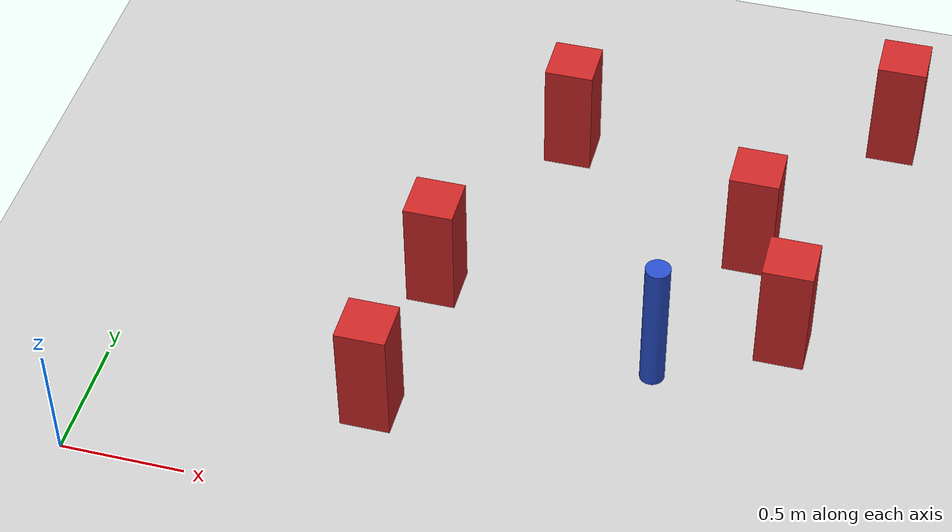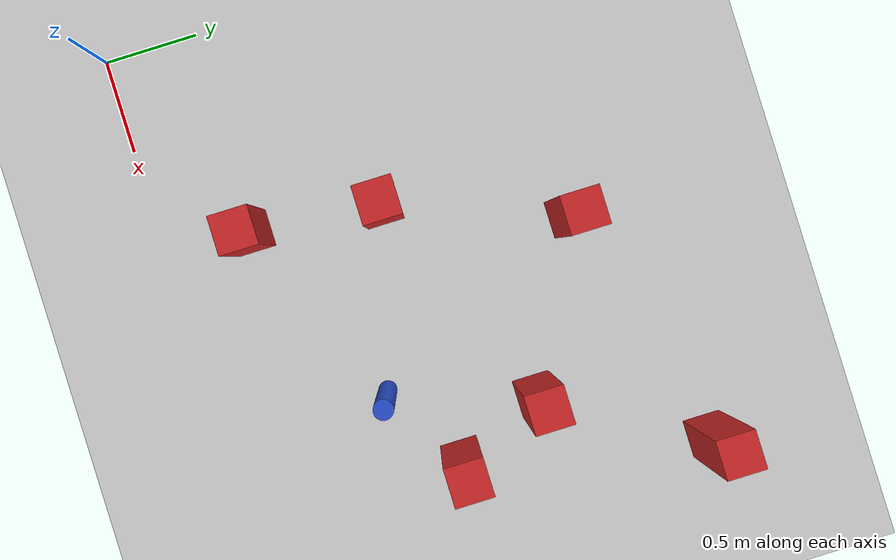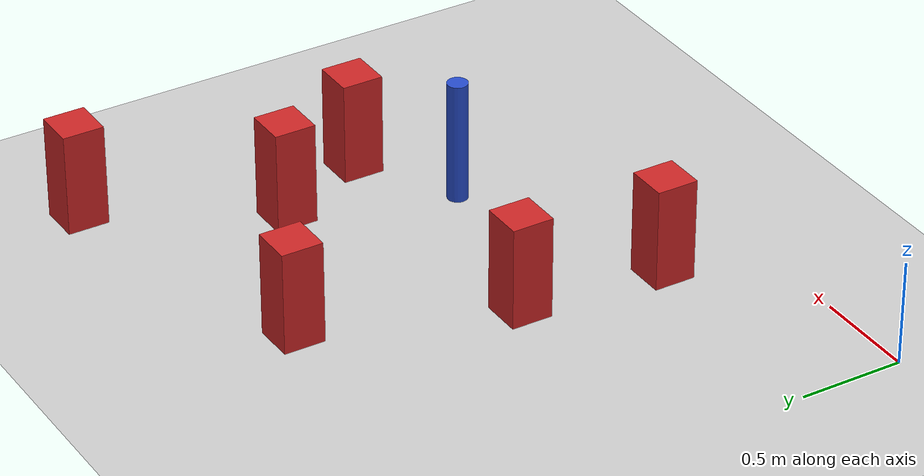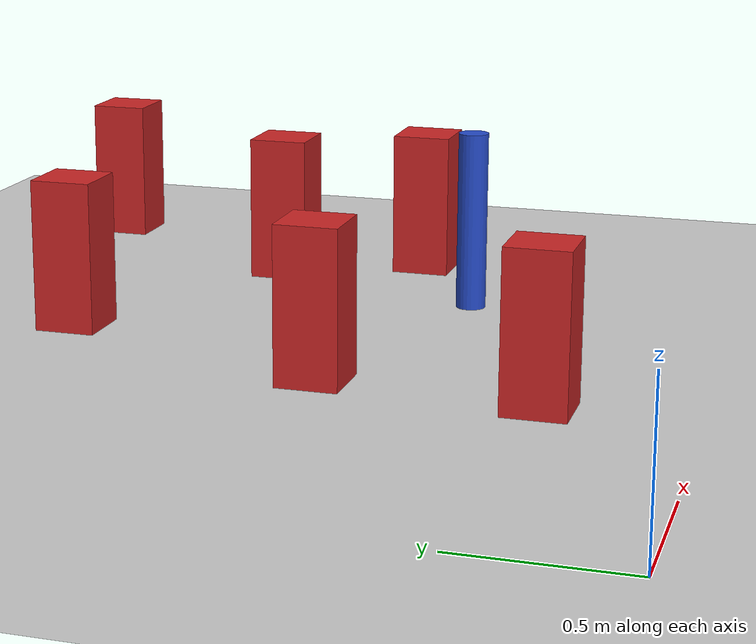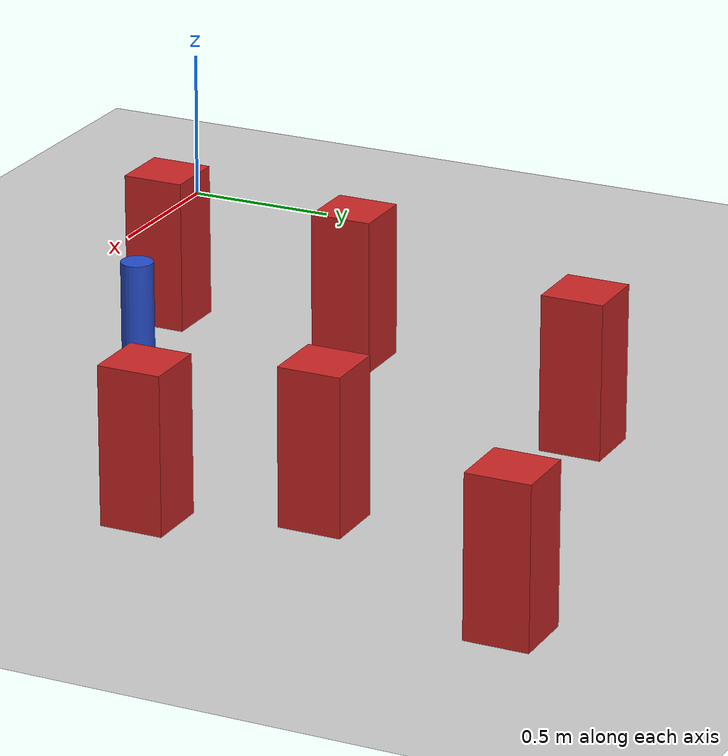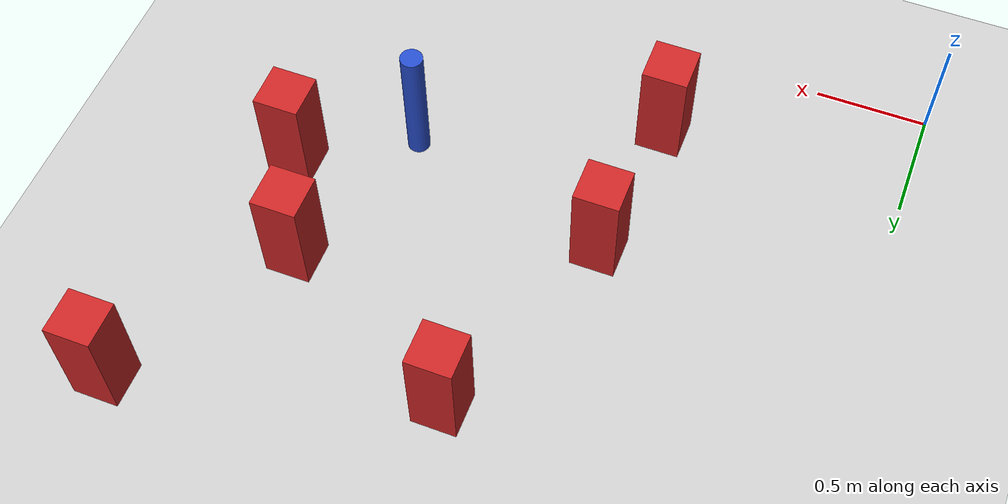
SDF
<sdf version="1.6">
 <world name="default">
  <model name="ground_plane">
   <static>1</static>
   <link name="link">
    <collision name="collision">
     <geometry><plane><normal>0 0 1</normal><size>100 100</size></plane></geometry>
     <surface><friction><ode><mu>100</mu><mu2>50</mu2></ode></friction></surface>
    </collision>
    <visual name="visual">
     <cast_shadows>0</cast_shadows>
     <geometry><plane><normal>0 0 1</normal><size>100 100</size></plane></geometry>
     <material>
      <ambient>1.0 1.0 1.0 1.0</ambient>
      <diffuse>0.8 0.8 0.8 1.0</diffuse>
      <specular>0.01 0.01 0.01 1.000000</specular>
     </material>
    </visual>
   </link>
  </model>
  <model name="square_post_obstacle22">
   <static>true</static>
   <pose>1.09951988133 0.476390049716 1.91545236811e-07 -7.35059704564e-06 1.12565212e-07 2.39332434364e-05</pose>
   <link name="link">
    <pose>0 0 0.25 0 -0 0</pose>
    <inertial>
     <mass>100</mass>
     <inertia>
      <ixx>0.166667</ixx>
      <ixy>0</ixy>
      <ixz>0</ixz>
      <iyy>0.166667</iyy>
      <iyz>0</iyz>
      <izz>0.166667</izz>
     </inertia>
    </inertial>
    <collision name="collision"><geometry><box><size>.2 .2 .5</size></box></geometry></collision>
    <visual name="visual">
     <geometry><box><size>.2 .2 .5</size></box></geometry>
     <material>
      <script><name>Gazebo/Red</name><uri>file://media/materials/scripts/gazebo.material</uri></script>
     </material>
    </visual>
   </link>
  </model>
  <model name="square_post_obstacle40">
   <static>true</static>
   <pose>1.16392120445 1.17354132471 1.91545236811e-07 -7.35059704564e-06 1.12565212e-07 2.39332434364e-05</pose>
   <link name="link">
    <pose>0 0 0.25 0 -0 0</pose>
    <inertial>
     <mass>100</mass>
     <inertia>
      <ixx>0.166667</ixx>
      <ixy>0</ixy>
      <ixz>0</ixz>
      <iyy>0.166667</iyy>
      <iyz>0</iyz>
      <izz>0.166667</izz>
     </inertia>
    </inertial>
    <collision name="collision"><geometry><box><size>.2 .2 .5</size></box></geometry></collision>
    <visual name="visual">
     <geometry><box><size>.2 .2 .5</size></box></geometry>
     <material>
      <script><name>Gazebo/Red</name><uri>file://media/materials/scripts/gazebo.material</uri></script>
     </material>
    </visual>
   </link>
  </model>
  <model name="square_post_obstacle41">
   <static>true</static>
   <pose>2.58108066992 1.194146074 1.91545236811e-07 -7.35059704564e-06 1.12565212e-07 2.39332434364e-05</pose>
   <link name="link">
    <pose>0 0 0.25 0 -0 0</pose>
    <inertial>
     <mass>100</mass>
     <inertia>
      <ixx>0.166667</ixx>
      <ixy>0</ixy>
      <ixz>0</ixz>
      <iyy>0.166667</iyy>
      <iyz>0</iyz>
      <izz>0.166667</izz>
     </inertia>
    </inertial>
    <collision name="collision"><geometry><box><size>.2 .2 .5</size></box></geometry></collision>
    <visual name="visual">
     <geometry><box><size>.2 .2 .5</size></box></geometry>
     <material>
      <script><name>Gazebo/Red</name><uri>file://media/materials/scripts/gazebo.material</uri></script>
     </material>
    </visual>
   </link>
  </model>
  <model name="square_post_obstacle94">
   <static>true</static>
   <pose>2.83821839437 2.46980169838 1.91545236811e-07 -7.35059704564e-06 1.12565212e-07 2.39332434364e-05</pose>
   <link name="link">
    <pose>0 0 0.25 0 -0 0</pose>
    <inertial>
     <mass>100</mass>
     <inertia>
      <ixx>0.166667</ixx>
      <ixy>0</ixy>
      <ixz>0</ixz>
      <iyy>0.166667</iyy>
      <iyz>0</iyz>
      <izz>0.166667</izz>
     </inertia>
    </inertial>
    <collision name="collision"><geometry><box><size>.2 .2 .5</size></box></geometry></collision>
    <visual name="visual">
     <geometry><box><size>.2 .2 .5</size></box></geometry>
     <material>
      <script><name>Gazebo/Red</name><uri>file://media/materials/scripts/gazebo.material</uri></script>
     </material>
    </visual>
   </link>
  </model>
  <model name="square_post_obstacle161">
   <static>true</static>
   <pose>2.36531829054 1.66253692175 1.91545236811e-07 -7.35059704564e-06 1.12565212e-07 2.39332434364e-05</pose>
   <link name="link">
    <pose>0 0 0.25 0 -0 0</pose>
    <inertial>
     <mass>100</mass>
     <inertia>
      <ixx>0.166667</ixx>
      <ixy>0</ixy>
      <ixz>0</ixz>
      <iyy>0.166667</iyy>
      <iyz>0</iyz>
      <izz>0.166667</izz>
     </inertia>
    </inertial>
    <collision name="collision"><geometry><box><size>.2 .2 .5</size></box></geometry></collision>
    <visual name="visual">
     <geometry><box><size>.2 .2 .5</size></box></geometry>
     <material>
      <script><name>Gazebo/Red</name><uri>file://media/materials/scripts/gazebo.material</uri></script>
     </material>
    </visual>
   </link>
  </model>
  <model name="square_post_obstacle184">
   <static>true</static>
   <pose>1.50473408871 2.10762487836 1.91545236811e-07 -7.35059704564e-06 1.12565212e-07 2.39332434364e-05</pose>
   <link name="link">
    <pose>0 0 0.25 0 -0 0</pose>
    <inertial>
     <mass>100</mass>
     <inertia>
      <ixx>0.166667</ixx>
      <ixy>0</ixy>
      <ixz>0</ixz>
      <iyy>0.166667</iyy>
      <iyz>0</iyz>
      <izz>0.166667</izz>
     </inertia>
    </inertial>
    <collision name="collision"><geometry><box><size>.2 .2 .5</size></box></geometry></collision>
    <visual name="visual">
     <geometry><box><size>.2 .2 .5</size></box></geometry>
     <material>
      <script><name>Gazebo/Red</name><uri>file://media/materials/scripts/gazebo.material</uri></script>
     </material>
    </visual>
   </link>
  </model>
  <model name="pole_obstacle220">
   <static>true</static>
   <pose>2.11220750726 0.917603680512 7.38925637345e-09 -8.471706928e-08 1.24976765177e-08 -1.74513093012e-07</pose>
   <link name="link">
    <pose>0 0 0.3 0 -0 0</pose>
    <inertial>
     <mass>1</mass>
     <inertia><ixx>0.145833</ixx><ixy>0</ixy><ixz>0</ixz><iyy>0.145833</iyy><iyz>0</iyz><izz>0.125</izz></inertia>
    </inertial>
    <collision name="collision">
     <geometry><cylinder><radius>0.05</radius><length>.6</length></cylinder></geometry>
    </collision>
    <visual name="visual">
     <geometry><cylinder><radius>0.05</radius><length>.6</length></cylinder></geometry>
     <material>
      <script><name>Gazebo/Blue</name><uri>file://media/materials/scripts/gazebo.material</uri></script>
     </material>
    </visual>
   </link>
  </model>
 </world>
</sdf>
